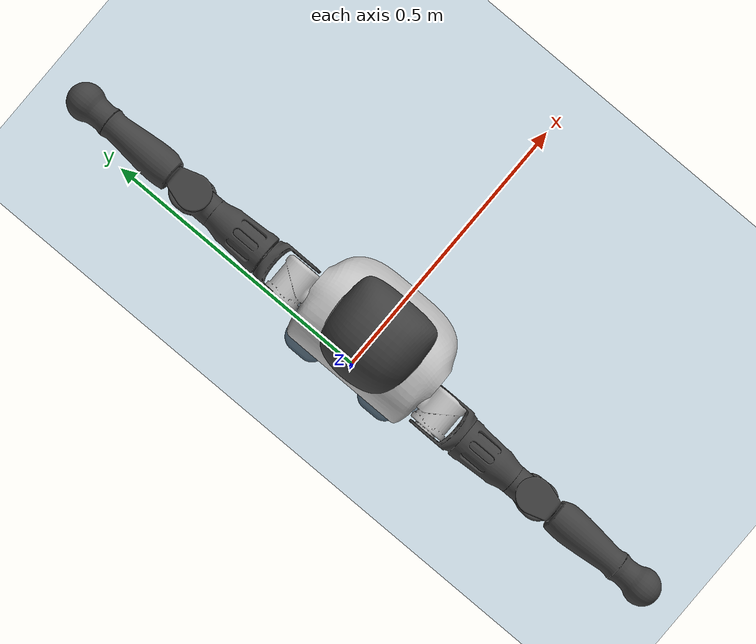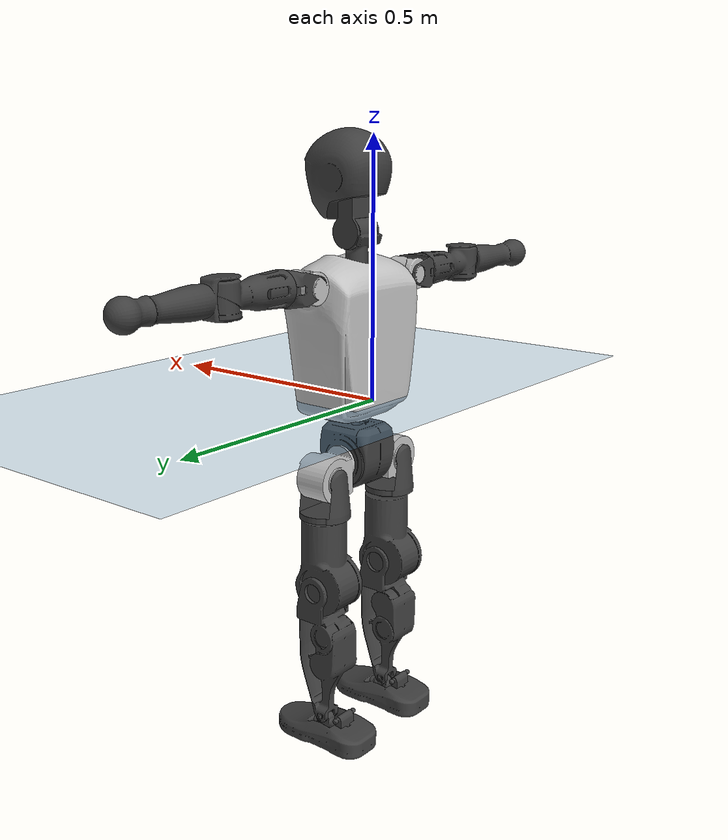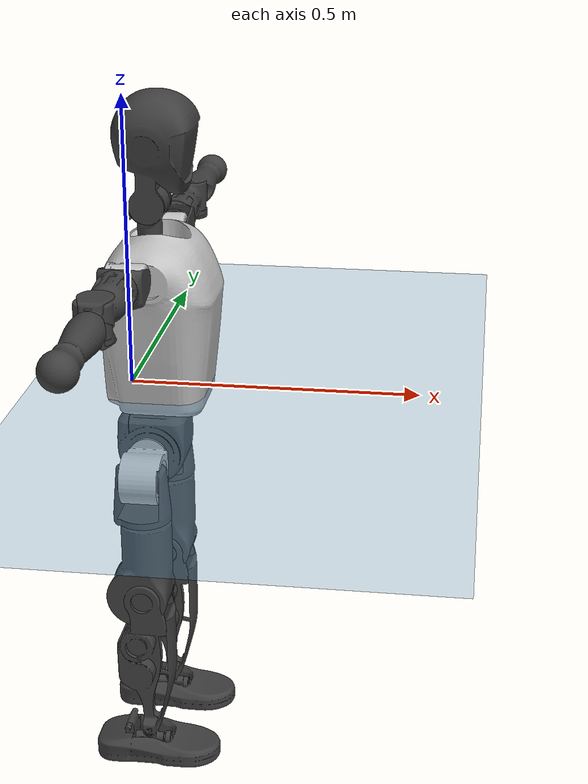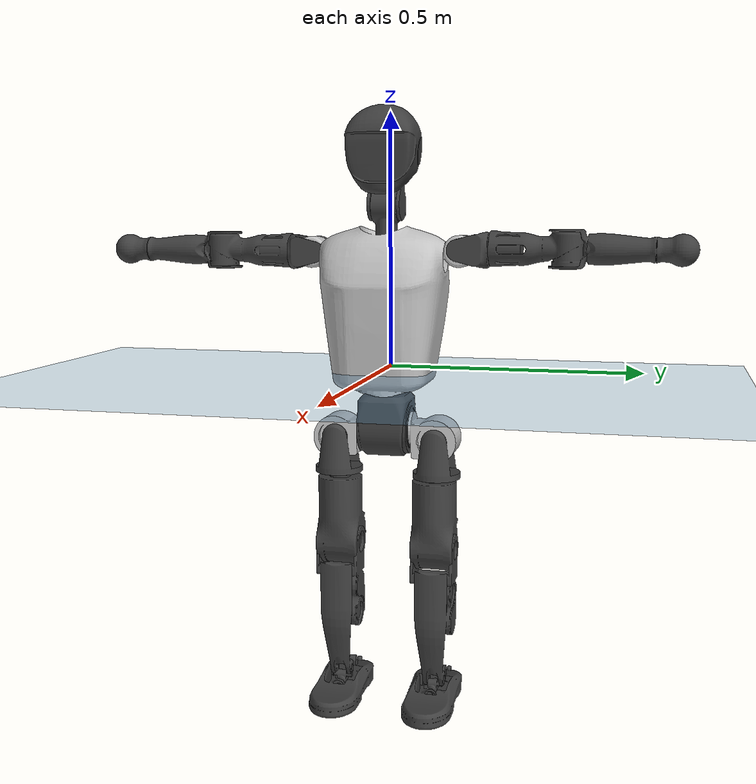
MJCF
<mujoco model="T1">
  <compiler angle="radian" assetdir="assets" balanceinertia="true" inertiafromgeom="false"/>

  <option timestep="0.005" density="1.2" viscosity="2e-05"/>

  <size nkey="1"/>

  <visual>
    <quality shadowsize="8192"/>
    <map shadowclip="0.5"/>
  </visual>

  <default>
    <default class="/">
      <joint armature="0.01" damping="0.01" frictionloss="0.1"/>
      <geom contype="0" conaffinity="0" group="1" solref="-1000 -80"/>
      <site size="0.01 0.005 0.005" group="5"/>
      <general forcelimited="true" biastype="affine" gainprm="25" biasprm="0 -25 -0.6"/>
      <default class="t1">
        <geom rgba="0.25 0.25 0.25 1"/>
        <default class="visual">
          <geom type="mesh" group="2"/>
        </default>
        <default class="collision">
          <geom group="3"/>
        </default>
        <default class="foot">
          <geom size="0.1115 0.05 0.015" type="box" condim="6" group="4" priority="1" solimp="0.015 1 0.015"/>
        </default>
        <default class="reward_collision_sphere">
          <geom group="5" rgba="1 0 0 1"/>
        </default>
      </default>
    </default>
  </default>

  <asset>
    <texture type="skybox" colorspace="auto" name="//unnamed_texture_0" builtin="gradient" rgb1="0.95 0.95 0.95" rgb2="0.95 0.95 0.95" width="100" height="600"/>
    <texture type="2d" colorspace="auto" name="texplane" builtin="checker" rgb1="0.345 0.575 0.748" rgb2="0.345 0.575 0.748" markrgb="1 1 1" width="512" height="512"/>
    <material name="MatPlane" class="/" texture="texplane" texuniform="true" texrepeat="2 2" specular="0.9"/>
    <mesh name="Trunk" class="/" file="Trunk.stl"/>
    <mesh name="H1" class="/" file="H1.stl"/>
    <mesh name="H2" class="/" file="H2.stl"/>
    <mesh name="AL1" class="/" file="AL1.stl"/>
    <mesh name="AL2" class="/" file="AL2.stl"/>
    <mesh name="AL3" class="/" file="AL3.stl"/>
    <mesh name="left_hand_link" class="/" file="left_hand_link.stl"/>
    <mesh name="AR1" class="/" file="AR1.stl"/>
    <mesh name="AR2" class="/" file="AR2.stl"/>
    <mesh name="AR3" class="/" file="AR3.stl"/>
    <mesh name="right_hand_link" class="/" file="right_hand_link.stl"/>
    <mesh name="Waist" class="/" file="Waist.stl"/>
    <mesh name="Hip_Pitch_Left" class="/" file="Hip_Pitch_Left.stl"/>
    <mesh name="Hip_Roll_Left" class="/" file="Hip_Roll_Left.stl"/>
    <mesh name="Hip_Yaw_Left" class="/" file="Hip_Yaw_Left.stl"/>
    <mesh name="Shank_Left" class="/" file="Shank_Left.stl"/>
    <mesh name="Ankle_Cross_Left" class="/" file="Ankle_Cross_Left.stl"/>
    <mesh name="left_foot_link" class="/" file="left_foot_link.stl"/>
    <mesh name="Hip_Pitch_Right" class="/" file="Hip_Pitch_Right.stl"/>
    <mesh name="Hip_Roll_Right" class="/" file="Hip_Roll_Right.stl"/>
    <mesh name="Hip_Yaw_Right" class="/" file="Hip_Yaw_Right.stl"/>
    <mesh name="Shank_Right" class="/" file="Shank_Right.stl"/>
    <mesh name="Ankle_Cross_Right" class="/" file="Ankle_Cross_Right.stl"/>
    <mesh name="right_foot_link" class="/" file="right_foot_link.stl"/>
  </asset>

  <worldbody>
    <geom name="floor" class="/" size="100 100 0.125" type="plane" group="0" material="MatPlane"/>
    <light name="toplight_shadow" class="/" pos="0 0 5" dir="0.0990148 0.0990148 -0.990148" type="directional" ambient="0.04 0.04 0.04" diffuse="0.55 0.55 0.55" specular="0.12 0.12 0.12"/>
    <light name="toplight_fill" class="/" pos="0 0 5" dir="0.0990148 0.0990148 -0.990148" type="directional" castshadow="false" ambient="0.04 0.04 0.04" diffuse="0.3 0.3 0.3" specular="0.08 0.08 0.08"/>
    <body name="trunk" childclass="t1" pos="0.00226194 8.55617e-05 0.000940006" quat="1 -0.000455764 -0.000423245 -0.000239155">
      <inertial pos="0.0322775 -0.000797044 0.107114" quat="0.999869 -0.00195444 -0.00973495 -0.0127443" mass="7.4104" diaginertia="0.00650303 0.0585149 0.0679867"/>
      <joint name="//unnamed_joint_0" type="free" armature="0" damping="0" frictionloss="0"/>
      <geom name="//unnamed_geom_1" class="visual" rgba="0.76 0.76 0.76 1" mesh="Trunk"/>
      <geom name="//unnamed_geom_2" class="collision" size="0.064477 0.0859693 0.128954" pos="0.0352289 0 0.125338" type="box"/>
      <geom name="//unnamed_geom_3" class="reward_collision_sphere" size="0.0988647" pos="0.0352289 0 0.104448"/>
      <geom name="//unnamed_geom_4" class="reward_collision_sphere" size="0.0128954" pos="0.0352289 0.0805333 0"/>
      <geom name="//unnamed_geom_5" class="reward_collision_sphere" size="0.0128954" pos="0.0352289 -0.0805333 0"/>
      <geom name="//unnamed_geom_6" class="reward_collision_sphere" size="0.0128954" pos="0.0352289 0.101377 0.188006"/>
      <geom name="//unnamed_geom_7" class="reward_collision_sphere" size="0.0128954" pos="0.0352289 -0.101377 0.188006"/>
      <site name="imu" pos="0.000938115 -0.0139538 0.0093151" size="0.00859693"/>
      <camera name="track" pos="0 -1.8949 0" quat="0.707107 0.707107 0 0" mode="trackcom"/>
      <camera name="ego_camera" pos="0.0716321 0 0.438681" quat="-0.5 -0.5 0.5 0.5"/>
      <body name="H1" pos="0.0378976 0.000319768 0.254939" quat="0.999999 0.000191986 0.000706145 -0.000856609">
        <inertial pos="-0.00306908 9.26732e-05 0.0571221" quat="0.764401 -0.0119263 0.00234935 0.644626" mass="0.290334" diaginertia="1.68599e-05 0.000174416 0.000190631"/>
        <joint name="AAHead_yaw" pos="0 0 0" axis="-0.000644539 0.000437025 1" stiffness="0.00222443" range="-1.55791 1.61899" armature="0.00878867" damping="0.0174585" frictionloss="0.0973931"/>
        <geom name="//unnamed_geom_8" class="visual" mesh="H1"/>
        <body name="H2" pos="0.00164571 0.00071694 0.0647904" quat="1 0.00038213 -0.0005526 7.31391e-05">
          <inertial pos="0.00471081 0.00198449 0.10367" quat="0.989141 0.0980859 -0.075875 -0.0788869" mass="0.395683" diaginertia="0.000133188 0.00141155 0.00215184"/>
          <joint name="Head_pitch" pos="0 0 0" axis="0.000855689 -1 0.000363656" range="-1.17808 0.347496" armature="0.00943463" damping="0.0112107" frictionloss="0.0880955"/>
          <geom name="//unnamed_geom_9" class="visual" mesh="H2"/>
          <geom name="//unnamed_geom_10" class="collision" size="0.0687754" pos="0.00587149 0 0.114893"/>
          <geom name="//unnamed_geom_11" class="reward_collision_sphere" size="0.0773723" pos="0.011743 0 0.104448"/>
        </body>
      </body>
      <body name="AL1" pos="0.0377757 0.100886 0.231593" quat="1 -3.99762e-06 0.000472078 2.08764e-05">
        <inertial pos="0.000391342 0.0424217 -0.0015227" quat="0.512791 0.491017 -0.5008 0.495124" mass="0.360002" diaginertia="0.000101671 0.00105366 0.000380669"/>
        <joint name="Left_Shoulder_Pitch" pos="0 0 0" axis="-0.00104405 0.999937 0.0111435" stiffness="0.00715998" range="-3.25099 1.22898" armature="0.00952572" damping="0.015434" frictionloss="0.0768526"/>
        <geom name="//unnamed_geom_12" class="visual" rgba="0.76 0.76 0.76 1" mesh="AL1"/>
        <body name="AL2" pos="0.00266848 0.0455587 0.00254877" quat="0.999999 -0.00137559 0.000619108 -0.000169496">
          <inertial pos="0.00179959 0.0337368 0.00266108" quat="0.488068 0.51169 -0.488053 0.511632" mass="0.0997395" diaginertia="2.8517e-05 0.000260558 0.000212931"/>
          <joint name="Left_Shoulder_Roll" pos="0 0 0" axis="-0.99994 -0.0101449 0.0041793" range="-1.5278 1.72564" armature="0.00879798" damping="0.00159889" frictionloss="0.0848699"/>
          <geom name="//unnamed_geom_13" class="visual" mesh="AL2"/>
          <body name="AL3" pos="1.29427e-05 0.058411 0.00281914" quat="0.999999 -0.000527081 0.000893707 0.000811264">
            <inertial pos="-0.000432547 0.0827358 0.00134672" quat="0.707766 0.706415 -0.00473436 -0.00473789" mass="0.657693" diaginertia="0.000936996 0.0101057 0.000792965"/>
            <joint name="Left_Elbow_Pitch" pos="0 0 0" axis="-0.00167767 -0.999997 -0.00185356" range="-2.26996 2.28996" armature="0.00825293" damping="0" frictionloss="0.0902072"/>
            <geom name="//unnamed_geom_14" class="visual" mesh="AL3"/>
            <geom name="//unnamed_geom_15" class="collision" size="0.0257908 0.064477" pos="0 0.0473725 0" quat="0.707105 0.707108 0 0" type="cylinder"/>
            <geom name="//unnamed_geom_16" class="reward_collision_sphere" size="0.0309489"/>
            <body name="left_hand_link" pos="0.00360829 0.139693 0.00132759" quat="1 -0.000648115 -0.000506692 -0.000132557">
              <inertial pos="-0.00150242 0.102867 -0.000380284" quat="0.71385 0.700222 -0.0103661 0.000816361" mass="0.201489" diaginertia="0.000573571 0.00617576 0.000265531"/>
              <joint name="Left_Elbow_Yaw" pos="0 0 0" axis="0.00849281 0.00215102 0.999962" stiffness="0.0111732" range="-2.38736 -0.0498308" armature="0.00937384" damping="0.0199359" frictionloss="0.0922715"/>
              <geom name="//unnamed_geom_17" class="visual" mesh="left_hand_link"/>
              <geom name="//unnamed_geom_18" class="collision" size="0.0257908 0.0752231" pos="0 0.123169 0" quat="0.707105 0.707108 0 0" type="cylinder"/>
              <geom name="//unnamed_geom_19" class="reward_collision_sphere" size="0.0429846"/>
              <geom name="//unnamed_geom_20" class="reward_collision_sphere" size="0.0300892" pos="0 0.10422 0"/>
              <geom name="//unnamed_geom_21" class="reward_collision_sphere" size="0.0300892" pos="0 0.203702 0"/>
            </body>
          </body>
        </body>
      </body>
      <body name="AR1" pos="0.0302141 -0.100741 0.228347" quat="0.999998 -0.000136619 0.00171185 -0.000322968">
        <inertial pos="0.00196347 -0.0404456 0.000116905" quat="0.504766 0.494607 -0.5046 0.495938" mass="0.336319" diaginertia="9.19126e-05 0.000986566 0.000366611"/>
        <joint name="Right_Shoulder_Pitch" pos="0 0 0" axis="-0.001236 -0.999999 -0.000809207" stiffness="0.00739853" range="-1.24238 3.35839" armature="0.00941161" damping="0.0113245" frictionloss="0.0748539"/>
        <geom name="//unnamed_geom_22" class="visual" rgba="0.76 0.76 0.76 1" mesh="AR1"/>
        <body name="AR2" pos="-0.0030912 -0.0407693 -0.000406879" quat="1 0.000106053 -9.18689e-05 8.63919e-05">
          <inertial pos="-0.000509179 -0.0343978 0.000475321" quat="0.511614 0.487869 -0.511259 0.488722" mass="0.103321" diaginertia="2.87545e-05 0.000272745 0.000233452"/>
          <joint name="Right_Shoulder_Roll" pos="0 0 0" axis="-0.999774 -0.00743454 -0.0198966" stiffness="0.00370661" range="-1.75787 1.55654" armature="0.00966287" damping="0.00602889" frictionloss="0.089666"/>
          <geom name="//unnamed_geom_23" class="visual" mesh="AR2"/>
          <body name="AR3" pos="-0.00186091 -0.0552354 0.00198656" quat="1 -5.99743e-05 3.39836e-05 0.000255591">
            <inertial pos="-0.000188828 -0.0783567 0.000503476" quat="0.7052 0.70889 -0.00731384 0.010705" mass="0.647169" diaginertia="0.000883847 0.00972145 0.000769393"/>
            <joint name="Right_Elbow_Pitch" pos="0 0 0" axis="0.000104389 0.999912 -0.0132627" range="-2.27922 2.221" armature="0.00869868" damping="0" frictionloss="0.0862121"/>
            <geom name="//unnamed_geom_24" class="visual" mesh="AR3"/>
            <geom name="//unnamed_geom_25" class="collision" size="0.0257908 0.064477" pos="0 -0.0473725 0" quat="0.707105 0.707108 0 0" type="cylinder"/>
            <geom name="//unnamed_geom_26" class="reward_collision_sphere" size="0.0309489"/>
            <body name="right_hand_link" pos="0.0017206 -0.136725 0.000455752" quat="1 0.000346351 -9.74078e-05 6.69154e-05">
              <inertial pos="-0.00208191 -0.104977 0.00148743" quat="0.706158 0.708053 0.000821848 0.00108418" mass="0.208388" diaginertia="0.000577005 0.00611536 0.000255712"/>
              <joint name="Right_Elbow_Yaw" pos="0 0 0" axis="-0.00100252 0.00753093 0.999971" stiffness="0.00685459" range="0.0523926 2.38461" armature="0.00847891" damping="0" frictionloss="0.0844684"/>
              <geom name="//unnamed_geom_27" class="visual" mesh="right_hand_link"/>
              <geom name="//unnamed_geom_28" class="collision" size="0.0257908 0.0752231" pos="0 -0.123169 0" quat="0.707105 0.707108 0 0" type="cylinder"/>
              <geom name="//unnamed_geom_29" class="reward_collision_sphere" size="0.0429846"/>
              <geom name="//unnamed_geom_30" class="reward_collision_sphere" size="0.0300892" pos="0 -0.10422 0"/>
              <geom name="//unnamed_geom_31" class="reward_collision_sphere" size="0.0300892" pos="0 -0.203702 0"/>
            </body>
          </body>
        </body>
      </body>
      <body name="Waist" pos="0.0356794 0.000200959 -0.117973" quat="1 4.41917e-05 0.000313155 0.000584687">
        <inertial pos="2.26231e-05 -0.000410288 0.00828193" quat="0.984933 -0.00107783 -0.172748 -0.00796596" mass="1.59119" diaginertia="0.000367122 0.004114 0.00577166"/>
        <joint name="Waist" pos="0 0 0" axis="-0.00820694 0.00454212 0.999956" range="-1.61866 1.51756" armature="0.00840922" damping="0.024955" frictionloss="0.0842824"/>
        <geom name="//unnamed_geom_32" class="visual" mesh="Waist"/>
        <body name="Hip_Pitch_Left" pos="-0.000790413 0.102101 -0.00258316" quat="1 0.000460851 -1.07318e-05 -0.000205946">
          <inertial pos="0.000477132 -0.00847831 -0.0166549" quat="0.973014 0.230484 0.00721107 0.00829248" mass="0.655598" diaginertia="0.000122853 0.00114182 0.00157059"/>
          <joint name="Left_Hip_Pitch" pos="0 0 0" axis="-0.0122445 0.999846 0.0125899" stiffness="0.0128782" range="-1.84996 1.57682" armature="0.0093958" damping="0.0136734" frictionloss="0.0867233"/>
          <geom name="//unnamed_geom_33" class="visual" rgba="0.76 0.76 0.76 1" mesh="Hip_Pitch_Left"/>
          <body name="Hip_Roll_Left" pos="0.000418461 0.000327524 -0.0210375" quat="1 -0.000190728 -3.41428e-05 -0.000271536">
            <inertial pos="0.00344762 -0.00131255 -0.0567066" quat="0.708238 -0.00399506 -0.00989284 0.705893" mass="0.242233" diaginertia="0.00012415 0.00117429 0.000653538"/>
            <joint name="Left_Hip_Roll" pos="0 0 0" axis="-0.999991 -0.00370462 0.0020717" stiffness="0.011832" range="-1.57157 0.202549" armature="0.00741893" damping="0" frictionloss="0.0740963"/>
            <geom name="//unnamed_geom_34" class="visual" mesh="Hip_Roll_Left"/>
            <geom name="//unnamed_geom_35" class="reward_collision_sphere" size="0.0472831"/>
            <body name="Hip_Yaw_Left" pos="0.00326278 -0.00351075 -0.0833321" quat="1 3.1404e-05 8.68079e-05 -0.000212371">
              <inertial pos="-0.00369501 -0.0034029 -0.0959181" quat="0.701552 -0.041181 -0.034236 0.710603" mass="1.37296" diaginertia="0.00176735 0.0188105 0.00315587"/>
              <joint name="Left_Hip_Yaw" pos="0 0 0" axis="0.00145119 0.0128923 -0.999916" stiffness="0.00601064" range="-1.01706 1.02189" armature="0.00873344" damping="0.0132013" frictionloss="0.0912748"/>
              <geom name="//unnamed_geom_36" class="visual" mesh="Hip_Yaw_Left"/>
              <geom name="//unnamed_geom_37" class="collision" size="0.0429846 0.0687754" type="cylinder"/>
              <body name="Shank_Left" pos="-0.00567097 0.000429127 -0.14326" quat="1 0.00012024 -0.000151235 -0.000305665">
                <inertial pos="-0.00286392 0.00237707 -0.127333" quat="0.997418 0.0037873 -0.0224836 0.068092" mass="1.05188" diaginertia="0.00239447 0.0255924 0.00234384"/>
                <joint name="Left_Knee_Pitch" pos="0 0 0" axis="-0.0025773 0.999987 0.0045064" range="-0.0204476 2.3753" armature="0.00779674" damping="0.019894" frictionloss="0.0848947"/>
                <geom name="//unnamed_geom_38" class="visual" mesh="Shank_Left"/>
                <geom name="//unnamed_geom_39" class="collision" size="0.0429846 0.064477" pos="0 0 -0.125338" type="cylinder"/>
                <geom name="//unnamed_geom_40" class="reward_collision_sphere" size="0.05588"/>
                <body name="Ankle_Cross_Left" pos="-0.0011617 -0.00255347 -0.289829" quat="1 1.00889e-05 -3.618e-06 6.85483e-06">
                  <inertial pos="-0.00233429 0.00149127 -0.00848554" quat="0.443163 0.551148 0.551435 0.44245" mass="0.0480821" diaginertia="2.16395e-06 2.03386e-05 1.4858e-05"/>
                  <joint name="Left_Ankle_Pitch" pos="0 0 0" axis="0.00664928 0.999972 -0.00337731" range="-0.878489 0.306419" armature="0.00829146" damping="0" frictionloss="0.0739621"/>
                  <geom name="//unnamed_geom_41" class="visual" mesh="Ankle_Cross_Left"/>
                  <body name="left_foot_link" pos="-0.000551803 -0.000343801 -0.0156793" quat="1 0.000110376 0.000134464 0.000242864">
                    <inertial pos="0.000217092 0.00210013 -0.00949997" quat="0.000476234 0.619225 0.00314828 0.785207" mass="0.428153" diaginertia="0.00019084 0.00187033 0.00269061"/>
                    <joint name="Left_Ankle_Roll" pos="0 0 0" axis="-0.999995 -0.00270096 0.00170686" stiffness="0.00404287" range="-0.387145 0.386527" armature="0.00887348" damping="0.0176344" frictionloss="0.0823582"/>
                    <geom name="//unnamed_geom_42" class="visual" mesh="left_foot_link"/>
                    <geom name="left_foot" class="foot" size="0.0948056 0.0456601 0.0117184" pos="0.00587149 0 -0.0156672"/>
                    <geom name="//unnamed_geom_44" class="reward_collision_sphere" size="0.044704" pos="0.00587149 0 -0.0156672"/>
                    <geom name="//unnamed_geom_45" class="reward_collision_sphere" size="0.0257908" pos="0.0557791 -0.0217914 -0.0156672"/>
                    <geom name="//unnamed_geom_46" class="reward_collision_sphere" size="0.0257908" pos="-0.0411004 -0.0217914 -0.0156672"/>
                    <site name="left_foot" class="foot" pos="0.00587149 0 -0.0156672" size="0.00859693"/>
                  </body>
                </body>
              </body>
            </body>
          </body>
        </body>
        <body name="Hip_Pitch_Right" pos="-0.00244903 -0.100711 -0.00233791" quat="1 -0.000289927 6.59379e-05 0.00073335">
          <inertial pos="-0.000363732 0.00739314 -0.0198004" quat="0.972043 -0.233665 0.0181281 -0.0143256" mass="0.652424" diaginertia="0.000126816 0.0011204 0.00160857"/>
          <joint name="Right_Hip_Pitch" pos="0 0 0" axis="0.00815617 -0.999911 -0.0105325" range="-1.53859 1.79166" armature="0.00833887" damping="0.0142635" frictionloss="0.0860362"/>
          <geom name="//unnamed_geom_47" class="visual" rgba="0.76 0.76 0.76 1" mesh="Hip_Pitch_Right"/>
          <body name="Hip_Roll_Right" pos="-0.000534708 9.05753e-05 -0.0184219" quat="1 0.000195015 -0.000130824 -0.000450422">
            <inertial pos="-0.00114305 -0.00203949 -0.0547124" quat="0.7148 -0.000899568 -0.00691239 0.699294" mass="0.240526" diaginertia="0.000119107 0.00109863 0.000630855"/>
            <joint name="Right_Hip_Roll" pos="0 0 0" axis="-0.999999 -0.000455792 -0.00109211" range="-0.200557 1.52999" armature="0.00745291" damping="0.0148754" frictionloss="0.0925784"/>
            <geom name="//unnamed_geom_48" class="visual" mesh="Hip_Roll_Right"/>
            <geom name="//unnamed_geom_49" class="reward_collision_sphere" size="0.0472831"/>
            <body name="Hip_Yaw_Right" pos="0.00237616 0.00285767 -0.0868339" quat="1 -2.17726e-05 -1.91713e-05 -7.80825e-06">
              <inertial pos="-0.00127994 -0.000153777 -0.095831" quat="0.713643 -0.0373946 -0.0354653 0.698612" mass="1.37729" diaginertia="0.00179253 0.0187338 0.00308668"/>
              <joint name="Right_Hip_Yaw" pos="0 0 0" axis="-0.000247568 -1.34515e-05 -1" range="-1.05181 1.05068" armature="0.00808146" damping="0" frictionloss="0.0866727"/>
              <geom name="//unnamed_geom_50" class="visual" mesh="Hip_Yaw_Right"/>
              <geom name="//unnamed_geom_51" class="collision" size="0.0429846 0.0687754" type="cylinder"/>
              <body name="Shank_Right" pos="-0.00441868 0.000453358 -0.138445" quat="1 -7.07032e-05 9.05531e-05 -2.12069e-05">
                <inertial pos="-0.00265586 -0.0020569 -0.131002" quat="0.999062 -0.00559219 -0.0250489 -0.0348649" mass="1.17052" diaginertia="0.00245318 0.0264101 0.00239134"/>
                <joint name="Right_Knee_Pitch" pos="0 0 0" axis="0.0168754 -0.999848 -0.00445993" stiffness="0.000572798" range="-2.3953 -0.0103394" armature="0.00868187" damping="0.024241" frictionloss="0.0740103"/>
                <geom name="//unnamed_geom_52" class="visual" mesh="Shank_Right"/>
                <geom name="//unnamed_geom_53" class="collision" size="0.0429846 0.064477" pos="0 0 -0.125338" type="cylinder"/>
                <geom name="//unnamed_geom_54" class="reward_collision_sphere" size="0.05588"/>
                <body name="Ankle_Cross_Right" pos="0.00139096 0.000844317 -0.292904" quat="1 1.44995e-05 -2.37512e-05 -3.29013e-05">
                  <inertial pos="-0.0043683 -0.00117336 -0.00605316" quat="0.443495 0.549844 0.55171 0.443395" mass="0.0457876" diaginertia="2.00786e-06 1.96575e-05 1.41568e-05"/>
                  <joint name="Right_Ankle_Pitch" pos="0 0 0" axis="-0.00798512 -0.999965 -0.00251308" stiffness="0.00804209" range="-0.292921 0.867107" armature="0.00953834" damping="0.0109228" frictionloss="0.0902223"/>
                  <geom name="//unnamed_geom_55" class="visual" mesh="Ankle_Cross_Right"/>
                  <body name="right_foot_link" pos="0.00313058 -2.35379e-05 -0.0120224" quat="1 -2.58947e-05 6.06278e-06 -4.32173e-05">
                    <inertial pos="-0.00184483 0.00223568 -0.00895808" quat="-0.0046726 0.626608 0.00876189 0.779271" mass="0.424346" diaginertia="0.000189586 0.00187238 0.00273733"/>
                    <joint name="Right_Ankle_Roll" pos="0 0 0" axis="-0.999988 -0.000116605 -0.00481916" range="-0.417553 0.392504" armature="0.00810466" damping="0.00480816" frictionloss="0.076396"/>
                    <geom name="//unnamed_geom_56" class="visual" mesh="right_foot_link"/>
                    <geom name="right_foot" class="foot" size="0.113218 0.0471701 0.0143646" pos="0.00587149 0 -0.0156672"/>
                    <geom name="//unnamed_geom_58" class="reward_collision_sphere" size="0.0343877"/>
                    <geom name="//unnamed_geom_59" class="reward_collision_sphere" size="0.0257908" pos="0.00587149 0 -0.0156672"/>
                    <geom name="//unnamed_geom_60" class="reward_collision_sphere" size="0.0257908" pos="0.0557791 0.0217914 -0.0156672"/>
                    <geom name="//unnamed_geom_61" class="reward_collision_sphere" size="0.0257908" pos="-0.0411004 0.0217914 -0.0156672"/>
                    <site name="right_foot" class="foot" pos="0.00587149 0 -0.0156672" size="0.00859693"/>
                  </body>
                </body>
              </body>
            </body>
          </body>
        </body>
      </body>
    </body>
  </worldbody>

  <contact>
    <pair class="/" geom1="floor" geom2="left_foot" name="//unnamed_contact_0"/>
    <pair class="/" geom1="floor" geom2="right_foot" name="//unnamed_contact_1"/>
  </contact>

  <actuator>
    <general name="AAHead_yaw" class="/" joint="AAHead_yaw" forcerange="-6.48647 6.48647" gainprm="23.5705" biasprm="0 -23.5705 -0.492473"/>
    <general name="Head_pitch" class="/" joint="Head_pitch" forcerange="-6.35978 6.35978" gainprm="23.5705" biasprm="0 -23.5705 -0.492473"/>
    <general name="Left_Shoulder_Pitch" class="/" joint="Left_Shoulder_Pitch" forcerange="-15.2334 15.2334" gainprm="23.5705" biasprm="0 -23.5705 -0.492473"/>
    <general name="Left_Shoulder_Roll" class="/" joint="Left_Shoulder_Roll" forcerange="-15.8563 15.8563" gainprm="23.5705" biasprm="0 -23.5705 -0.492473"/>
    <general name="Left_Elbow_Pitch" class="/" joint="Left_Elbow_Pitch" forcerange="-16.5434 16.5434" gainprm="23.5705" biasprm="0 -23.5705 -0.492473"/>
    <general name="Left_Elbow_Yaw" class="/" joint="Left_Elbow_Yaw" forcerange="-17.0691 17.0691" gainprm="23.5705" biasprm="0 -23.5705 -0.492473"/>
    <general name="Right_Shoulder_Pitch" class="/" joint="Right_Shoulder_Pitch" forcerange="-13.9108 13.9108" gainprm="23.5705" biasprm="0 -23.5705 -0.492473"/>
    <general name="Right_Shoulder_Roll" class="/" joint="Right_Shoulder_Roll" forcerange="-14.3431 14.3431" gainprm="23.5705" biasprm="0 -23.5705 -0.492473"/>
    <general name="Right_Elbow_Pitch" class="/" joint="Right_Elbow_Pitch" forcerange="-15.8369 15.8369" gainprm="23.5705" biasprm="0 -23.5705 -0.492473"/>
    <general name="Right_Elbow_Yaw" class="/" joint="Right_Elbow_Yaw" forcerange="-16.5781 16.5781" gainprm="23.5705" biasprm="0 -23.5705 -0.492473"/>
    <general name="Waist" class="/" joint="Waist" forcerange="-24.7546 24.7546" gainprm="23.5705" biasprm="0 -23.5705 -0.492473"/>
    <general name="Left_Hip_Pitch" class="/" joint="Left_Hip_Pitch" forcerange="-37.9963 37.9963" gainprm="23.5705" biasprm="0 -23.5705 -0.492473"/>
    <general name="Left_Hip_Roll" class="/" joint="Left_Hip_Roll" forcerange="-27.0881 27.0881" gainprm="23.5705" biasprm="0 -23.5705 -0.492473"/>
    <general name="Left_Hip_Yaw" class="/" joint="Left_Hip_Yaw" forcerange="-24.1176 24.1176" gainprm="23.5705" biasprm="0 -23.5705 -0.492473"/>
    <general name="Left_Knee_Pitch" class="/" joint="Left_Knee_Pitch" forcerange="-56.6984 56.6984" gainprm="23.5705" biasprm="0 -23.5705 -0.492473"/>
    <general name="Left_Ankle_Pitch" class="/" joint="Left_Ankle_Pitch" forcerange="-15.4489 15.4489" gainprm="23.5705" biasprm="0 -23.5705 -0.492473"/>
    <general name="Left_Ankle_Roll" class="/" joint="Left_Ankle_Roll" forcerange="-13.3417 13.3417" gainprm="23.5705" biasprm="0 -23.5705 -0.492473"/>
    <general name="Right_Hip_Pitch" class="/" joint="Right_Hip_Pitch" forcerange="-39.3852 39.3852" gainprm="23.5705" biasprm="0 -23.5705 -0.492473"/>
    <general name="Right_Hip_Roll" class="/" joint="Right_Hip_Roll" forcerange="-24.7278 24.7278" gainprm="23.5705" biasprm="0 -23.5705 -0.492473"/>
    <general name="Right_Hip_Yaw" class="/" joint="Right_Hip_Yaw" forcerange="-23.3309 23.3309" gainprm="23.5705" biasprm="0 -23.5705 -0.492473"/>
    <general name="Right_Knee_Pitch" class="/" joint="Right_Knee_Pitch" forcerange="-48.5624 48.5624" gainprm="23.5705" biasprm="0 -23.5705 -0.492473"/>
    <general name="Right_Ankle_Pitch" class="/" joint="Right_Ankle_Pitch" forcerange="-16.7665 16.7665" gainprm="23.5705" biasprm="0 -23.5705 -0.492473"/>
    <general name="Right_Ankle_Roll" class="/" joint="Right_Ankle_Roll" forcerange="-14.1486 14.1486" gainprm="23.5705" biasprm="0 -23.5705 -0.492473"/>
  </actuator>

  <sensor>
    <gyro site="imu" name="imu_angular_velocity"/>
    <velocimeter site="imu" name="imu_linear_velocity"/>
    <framelinvel objtype="site" objname="left_foot" name="left_foot_global_linear_velocity"/>
    <framelinvel objtype="site" objname="right_foot" name="right_foot_global_linear_velocity"/>
  </sensor>

  <keyframe>
    <key name="home" qpos="0 0 0.6385 1 0 0 0 0 0 0 1.4 0 -0.4 0 -1.4 0 0.4 0 -0.4 0 0 0.8 -0.4 0 0.4 0 0 -0.8 0.4 0"/>
  </keyframe>
</mujoco>
